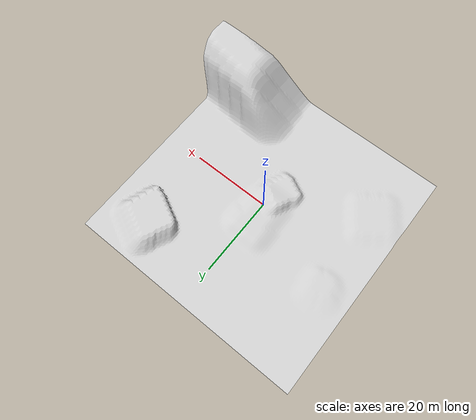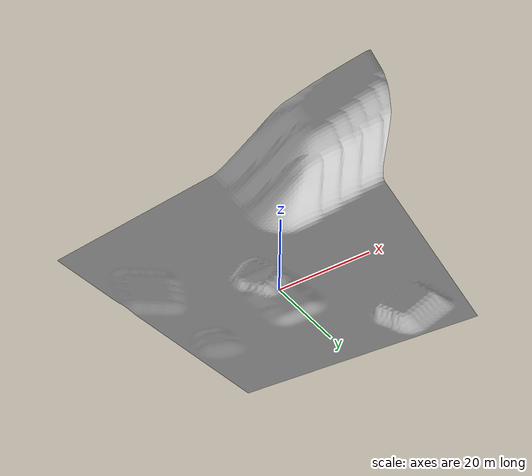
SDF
<sdf version="1.7">
  <model name="forest_terrain">
    <static>true</static>
    <link name="link">

      <collision name="collision">
        <geometry>
          <mesh>
            <uri>model://forest_terrain/materials/textures/Elevated_Terrain_Test.dae</uri>
            <scale>30 30 30</scale>  <!-- make the mesh large enough -->
          </mesh>
        </geometry>
      </collision>

      <visual name="visual">
        <cast_shadows>false</cast_shadows>
        <geometry>
          <mesh>
            <uri>model://forest_terrain/materials/textures/Elevated_Terrain_Test.dae</uri>
            <scale>30 30 30</scale>
          </mesh>
        </geometry>

        <!-- Force a texture, regardless of what's inside the .dae -->
        <material>
          <ambient>0.5 0.5 0.5 1</ambient>
          <diffuse>0.8 0.8 0.8 1</diffuse>
          <specular>0.1 0.1 0.1 1</specular>
          <double_sided>true</double_sided>
          <pbr>
            <metal>
              <albedo_map>model://forest_terrain/materials/textures/forest_overhead.png</albedo_map>
              <!-- Optional, but helps lighting look sane -->
              <roughness>0.9</roughness>
              <metalness>0.0</metalness>
            </metal>
          </pbr>
        </material>
      </visual>

    </link>
  </model>
</sdf>
